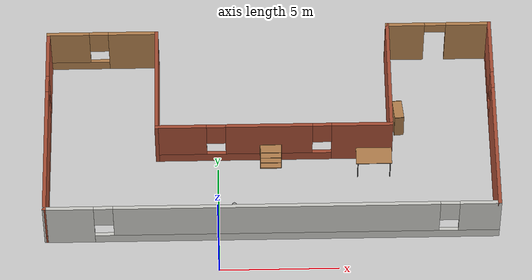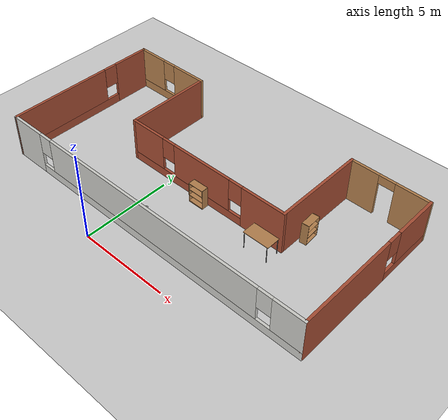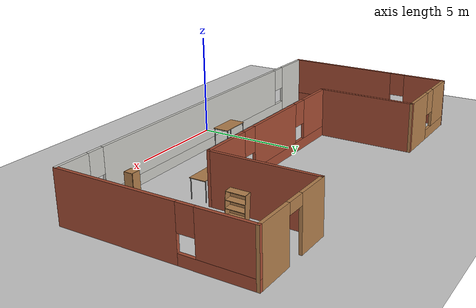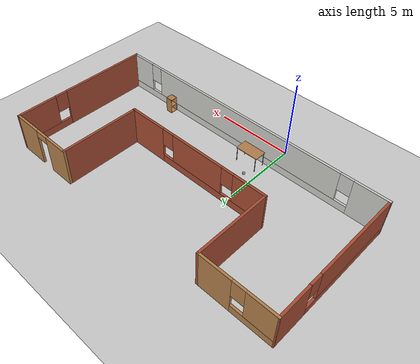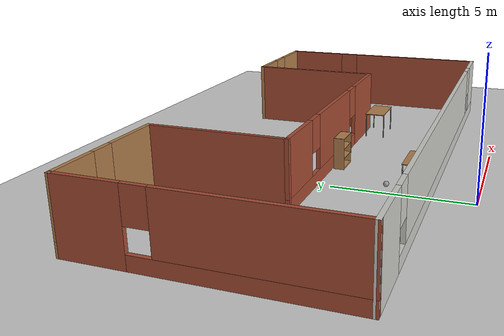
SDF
<sdf version="1.6">
 <world name="default">
  <light name="sun" type="directional">
   <pose>0 0 10 0 -0 0</pose>
   <diffuse>0.8 0.8 0.8 1</diffuse>
   <specular>0.2 0.2 0.2 1</specular>
   <attenuation>
    <range>1000</range>
    <constant>0.9</constant>
    <linear>0.01</linear>
    <quadratic>0.001</quadratic>
   </attenuation>
   <direction>-0.5 0.1 -0.9</direction>
  </light>
  <model name="ground_plane">
   <static>1</static>
   <link name="link">
    <collision name="collision">
     <geometry><plane><normal>0 0 1</normal><size>100 100</size></plane></geometry>
     <surface>
      <contact><collide_bitmask>65535</collide_bitmask></contact>
      <friction><ode><mu>100</mu><mu2>50</mu2></ode></friction>
     </surface>
    </collision>
    <visual name="visual">
     <cast_shadows>0</cast_shadows>
     <geometry><plane><normal>0 0 1</normal><size>100 100</size></plane></geometry>
     <material>
      <script><uri>file://media/materials/scripts/gazebo.material</uri><name>Gazebo/Grey</name></script>
     </material>
    </visual>
   </link>
  </model>
  <gravity>0 0 -9.8</gravity>
  <magnetic_field>6e-06 2.3e-05 -4.2e-05</magnetic_field>
  <atmosphere type="adiabatic"/>
  <physics name="default_physics" default="0" type="ode">
   <max_step_size>0.001</max_step_size>
   <real_time_factor>1</real_time_factor>
   <real_time_update_rate>1000</real_time_update_rate>
  </physics>
  <scene><ambient>0.4 0.4 0.4 1</ambient><background>0.7 0.7 0.7 1</background><shadows>1</shadows></scene>
  <spherical_coordinates>
   <surface_model>EARTH_WGS84</surface_model>
   <latitude_deg>0</latitude_deg>
   <longitude_deg>0</longitude_deg>
   <elevation>0</elevation>
   <heading_deg>0</heading_deg>
  </spherical_coordinates>
  <model name="building">
   <pose>2.21665 6.11467 0 0 -0 0</pose>
   <link name="Wall_0">
    <pose>0.000211 -4.54979 0 0 -0 0</pose>
    <visual name="Wall_0_Visual_0">
     <pose>-8.44191 0 1.25 0 -0 0</pose>
     <geometry><box><size>2.11618 0.15 2.5</size></box></geometry>
     <material>
      <script><uri>file://media/materials/scripts/gazebo.material</uri><name>Gazebo/CeilingTiled</name></script>
      <ambient>1 1 1 1</ambient>
     </material>
     <meta><layer>0</layer></meta>
    </visual>
    <collision name="Wall_0_Collision_0">
     <geometry><box><size>2.11618 0.15 2.5</size></box></geometry>
     <pose>-8.44191 0 1.25 0 -0 0</pose>
    </collision>
    <visual name="Wall_0_Visual_1">
     <pose>1.05809 0 0.25 0 -0 0</pose>
     <geometry><box><size>16.8838 0.15 0.5</size></box></geometry>
     <material>
      <script><uri>file://media/materials/scripts/gazebo.material</uri><name>Gazebo/CeilingTiled</name></script>
      <ambient>1 1 1 1</ambient>
     </material>
     <meta><layer>0</layer></meta>
    </visual>
    <collision name="Wall_0_Collision_1">
     <geometry><box><size>16.8838 0.15 0.5</size></box></geometry>
     <pose>1.05809 0 0.25 0 -0 0</pose>
    </collision>
    <visual name="Wall_0_Visual_2">
     <pose>0.193942 0 1.5 0 -0 0</pose>
     <geometry><box><size>13.5555 0.15 2</size></box></geometry>
     <material>
      <script><uri>file://media/materials/scripts/gazebo.material</uri><name>Gazebo/CeilingTiled</name></script>
      <ambient>1 1 1 1</ambient>
     </material>
     <meta><layer>0</layer></meta>
    </visual>
    <collision name="Wall_0_Collision_2">
     <geometry><box><size>13.5555 0.15 2</size></box></geometry>
     <pose>0.193942 0 1.5 0 -0 0</pose>
    </collision>
    <visual name="Wall_0_Visual_3">
     <pose>8.63585 0 1.5 0 -0 0</pose>
     <geometry><box><size>1.72829 0.15 2</size></box></geometry>
     <material>
      <script><uri>file://media/materials/scripts/gazebo.material</uri><name>Gazebo/CeilingTiled</name></script>
      <ambient>1 1 1 1</ambient>
     </material>
     <meta><layer>0</layer></meta>
    </visual>
    <collision name="Wall_0_Collision_3">
     <geometry><box><size>1.72829 0.15 2</size></box></geometry>
     <pose>8.63585 0 1.5 0 -0 0</pose>
    </collision>
    <visual name="Wall_0_Visual_4">
     <pose>-6.98382 0 1.9 0 -0 0</pose>
     <geometry><box><size>0.8 0.15 1.2</size></box></geometry>
     <material>
      <script><uri>file://media/materials/scripts/gazebo.material</uri><name>Gazebo/CeilingTiled</name></script>
      <ambient>1 1 1 1</ambient>
     </material>
     <meta><layer>0</layer></meta>
    </visual>
    <collision name="Wall_0_Collision_4">
     <geometry><box><size>0.8 0.15 1.2</size></box></geometry>
     <pose>-6.98382 0 1.9 0 -0 0</pose>
    </collision>
    <visual name="Wall_0_Visual_5">
     <pose>7.37171 0 1.9 0 -0 0</pose>
     <geometry><box><size>0.8 0.15 1.2</size></box></geometry>
     <material>
      <script><uri>file://media/materials/scripts/gazebo.material</uri><name>Gazebo/CeilingTiled</name></script>
      <ambient>1 1 1 1</ambient>
     </material>
     <meta><layer>0</layer></meta>
    </visual>
    <collision name="Wall_0_Collision_5">
     <geometry><box><size>0.8 0.15 1.2</size></box></geometry>
     <pose>7.37171 0 1.9 0 -0 0</pose>
    </collision>
   </link>
   <link name="Wall_1">
    <pose>9.42521 0.000211 0 0 -0 1.5708</pose>
    <visual name="Wall_1_Visual_0">
     <pose>-1.70833 0 1.25 0 -0 0</pose>
     <geometry><box><size>5.83334 0.15 2.5</size></box></geometry>
     <material>
      <script><uri>file://media/materials/scripts/gazebo.material</uri><name>Gazebo/Bricks</name></script>
      <ambient>1 1 1 1</ambient>
     </material>
     <meta><layer>0</layer></meta>
    </visual>
    <collision name="Wall_1_Collision_0">
     <geometry><box><size>5.83334 0.15 2.5</size></box></geometry>
     <pose>-1.70833 0 1.25 0 -0 0</pose>
    </collision>
    <visual name="Wall_1_Visual_1">
     <pose>2.91667 0 0.25 0 -0 0</pose>
     <geometry><box><size>3.41666 0.15 0.5</size></box></geometry>
     <material>
      <script><uri>file://media/materials/scripts/gazebo.material</uri><name>Gazebo/Bricks</name></script>
      <ambient>1 1 1 1</ambient>
     </material>
     <meta><layer>0</layer></meta>
    </visual>
    <collision name="Wall_1_Collision_1">
     <geometry><box><size>3.41666 0.15 0.5</size></box></geometry>
     <pose>2.91667 0 0.25 0 -0 0</pose>
    </collision>
    <visual name="Wall_1_Visual_2">
     <pose>3.31667 0 1.5 0 -0 0</pose>
     <geometry><box><size>2.61666 0.15 2</size></box></geometry>
     <material>
      <script><uri>file://media/materials/scripts/gazebo.material</uri><name>Gazebo/Bricks</name></script>
      <ambient>1 1 1 1</ambient>
     </material>
     <meta><layer>0</layer></meta>
    </visual>
    <collision name="Wall_1_Collision_2">
     <geometry><box><size>2.61666 0.15 2</size></box></geometry>
     <pose>3.31667 0 1.5 0 -0 0</pose>
    </collision>
    <visual name="Wall_1_Visual_3">
     <pose>1.60834 0 1.9 0 -0 0</pose>
     <geometry><box><size>0.8 0.15 1.2</size></box></geometry>
     <material>
      <script><uri>file://media/materials/scripts/gazebo.material</uri><name>Gazebo/Bricks</name></script>
      <ambient>1 1 1 1</ambient>
     </material>
     <meta><layer>0</layer></meta>
    </visual>
    <collision name="Wall_1_Collision_3">
     <geometry><box><size>0.8 0.15 1.2</size></box></geometry>
     <pose>1.60834 0 1.9 0 -0 0</pose>
    </collision>
   </link>
   <link name="Wall_2">
    <pose>7.25021 4.55021 0 0 -0 3.14159</pose>
    <visual name="Wall_2_Visual_0">
     <pose>-1.2871 0 1.25 0 -0 0</pose>
     <geometry><box><size>1.9258 0.15 2.5</size></box></geometry>
     <material>
      <script><uri>file://media/materials/scripts/gazebo.material</uri><name>Gazebo/Wood</name></script>
      <ambient>1 1 1 1</ambient>
     </material>
     <meta><layer>0</layer></meta>
    </visual>
    <collision name="Wall_2_Collision_0">
     <geometry><box><size>1.9258 0.15 2.5</size></box></geometry>
     <pose>-1.2871 0 1.25 0 -0 0</pose>
    </collision>
    <visual name="Wall_2_Visual_1">
     <pose>1.4129 0 1.25 0 -0 0</pose>
     <geometry><box><size>1.6742 0.15 2.5</size></box></geometry>
     <material>
      <script><uri>file://media/materials/scripts/gazebo.material</uri><name>Gazebo/Wood</name></script>
      <ambient>1 1 1 1</ambient>
     </material>
     <meta><layer>0</layer></meta>
    </visual>
    <collision name="Wall_2_Collision_1">
     <geometry><box><size>1.6742 0.15 2.5</size></box></geometry>
     <pose>1.4129 0 1.25 0 -0 0</pose>
    </collision>
    <visual name="Wall_2_Visual_2">
     <pose>0.125804 0 2.25 0 -0 0</pose>
     <geometry><box><size>0.9 0.15 0.5</size></box></geometry>
     <material>
      <script><uri>file://media/materials/scripts/gazebo.material</uri><name>Gazebo/Wood</name></script>
      <ambient>1 1 1 1</ambient>
     </material>
     <meta><layer>0</layer></meta>
    </visual>
    <collision name="Wall_2_Collision_2">
     <geometry><box><size>0.9 0.15 0.5</size></box></geometry>
     <pose>0.125804 0 2.25 0 -0 0</pose>
    </collision>
   </link>
   <link name="Wall_3">
    <collision name="Wall_3_Collision">
     <geometry><box><size>5.25 0.15 2.5</size></box></geometry>
     <pose>0 0 1.25 0 -0 0</pose>
    </collision>
    <visual name="Wall_3_Visual">
     <pose>0 0 1.25 0 -0 0</pose>
     <geometry><box><size>5.25 0.15 2.5</size></box></geometry>
     <material>
      <script><uri>file://media/materials/scripts/gazebo.material</uri><name>Gazebo/Bricks</name></script>
      <ambient>1 1 1 1</ambient>
     </material>
     <meta><layer>0</layer></meta>
    </visual>
    <pose>5.07521 2.00021 0 0 0 -1.5708</pose>
   </link>
   <link name="Wall_4">
    <pose>0.150211 -0.549788 0 0 -0 3.14159</pose>
    <visual name="Wall_4_Visual_0">
     <pose>-3.71201 0 1.25 0 -0 0</pose>
     <geometry><box><size>2.57599 0.15 2.5</size></box></geometry>
     <material>
      <script><uri>file://media/materials/scripts/gazebo.material</uri><name>Gazebo/Bricks</name></script>
      <ambient>1 1 1 1</ambient>
     </material>
     <meta><layer>0</layer></meta>
    </visual>
    <collision name="Wall_4_Collision_0">
     <geometry><box><size>2.57599 0.15 2.5</size></box></geometry>
     <pose>-3.71201 0 1.25 0 -0 0</pose>
    </collision>
    <visual name="Wall_4_Visual_1">
     <pose>1.28799 0 0.25 0 -0 0</pose>
     <geometry><box><size>7.42401 0.15 0.5</size></box></geometry>
     <material>
      <script><uri>file://media/materials/scripts/gazebo.material</uri><name>Gazebo/Bricks</name></script>
      <ambient>1 1 1 1</ambient>
     </material>
     <meta><layer>0</layer></meta>
    </visual>
    <collision name="Wall_4_Collision_1">
     <geometry><box><size>7.42401 0.15 0.5</size></box></geometry>
     <pose>1.28799 0 0.25 0 -0 0</pose>
    </collision>
    <visual name="Wall_4_Visual_2">
     <pose>0.203567 0 1.5 0 -0 0</pose>
     <geometry><box><size>3.65516 0.15 2</size></box></geometry>
     <material>
      <script><uri>file://media/materials/scripts/gazebo.material</uri><name>Gazebo/Bricks</name></script>
      <ambient>1 1 1 1</ambient>
     </material>
     <meta><layer>0</layer></meta>
    </visual>
    <collision name="Wall_4_Collision_2">
     <geometry><box><size>3.65516 0.15 2</size></box></geometry>
     <pose>0.203567 0 1.5 0 -0 0</pose>
    </collision>
    <visual name="Wall_4_Visual_3">
     <pose>3.91557 0 1.5 0 -0 0</pose>
     <geometry><box><size>2.16885 0.15 2</size></box></geometry>
     <material>
      <script><uri>file://media/materials/scripts/gazebo.material</uri><name>Gazebo/Bricks</name></script>
      <ambient>1 1 1 1</ambient>
     </material>
     <meta><layer>0</layer></meta>
    </visual>
    <collision name="Wall_4_Collision_3">
     <geometry><box><size>2.16885 0.15 2</size></box></geometry>
     <pose>3.91557 0 1.5 0 -0 0</pose>
    </collision>
    <visual name="Wall_4_Visual_4">
     <pose>-2.02401 0 1.9 0 -0 0</pose>
     <geometry><box><size>0.8 0.15 1.2</size></box></geometry>
     <material>
      <script><uri>file://media/materials/scripts/gazebo.material</uri><name>Gazebo/Bricks</name></script>
      <ambient>1 1 1 1</ambient>
     </material>
     <meta><layer>0</layer></meta>
    </visual>
    <collision name="Wall_4_Collision_4">
     <geometry><box><size>0.8 0.15 1.2</size></box></geometry>
     <pose>-2.02401 0 1.9 0 -0 0</pose>
    </collision>
    <visual name="Wall_4_Visual_5">
     <pose>2.43115 0 1.9 0 -0 0</pose>
     <geometry><box><size>0.8 0.15 1.2</size></box></geometry>
     <material>
      <script><uri>file://media/materials/scripts/gazebo.material</uri><name>Gazebo/Bricks</name></script>
      <ambient>1 1 1 1</ambient>
     </material>
     <meta><layer>0</layer></meta>
    </visual>
    <collision name="Wall_4_Collision_5">
     <geometry><box><size>0.8 0.15 1.2</size></box></geometry>
     <pose>2.43115 0 1.9 0 -0 0</pose>
    </collision>
   </link>
   <link name="Wall_5">
    <collision name="Wall_5_Collision">
     <geometry><box><size>5 0.15 2.5</size></box></geometry>
     <pose>0 0 1.25 0 -0 0</pose>
    </collision>
    <visual name="Wall_5_Visual">
     <pose>0 0 1.25 0 -0 0</pose>
     <geometry><box><size>5 0.15 2.5</size></box></geometry>
     <material>
      <script><uri>file://media/materials/scripts/gazebo.material</uri><name>Gazebo/Bricks</name></script>
      <ambient>1 1 1 1</ambient>
     </material>
     <meta><layer>0</layer></meta>
    </visual>
    <pose>-4.77479 1.87521 0 0 -0 1.5708</pose>
   </link>
   <link name="Wall_6">
    <pose>-7.07479 4.30021 0 0 -0 3.14159</pose>
    <visual name="Wall_6_Visual_0">
     <pose>-1.30933 0 1.25 0 -0 0</pose>
     <geometry><box><size>2.13133 0.15 2.5</size></box></geometry>
     <material>
      <script><uri>file://media/materials/scripts/gazebo.material</uri><name>Gazebo/Wood</name></script>
      <ambient>1 1 1 1</ambient>
     </material>
     <meta><layer>0</layer></meta>
    </visual>
    <collision name="Wall_6_Collision_0">
     <geometry><box><size>2.13133 0.15 2.5</size></box></geometry>
     <pose>-1.30933 0 1.25 0 -0 0</pose>
    </collision>
    <visual name="Wall_6_Visual_1">
     <pose>1.06567 0 0.25 0 -0 0</pose>
     <geometry><box><size>2.61867 0.15 0.5</size></box></geometry>
     <material>
      <script><uri>file://media/materials/scripts/gazebo.material</uri><name>Gazebo/Wood</name></script>
      <ambient>1 1 1 1</ambient>
     </material>
     <meta><layer>0</layer></meta>
    </visual>
    <collision name="Wall_6_Collision_1">
     <geometry><box><size>2.61867 0.15 0.5</size></box></geometry>
     <pose>1.06567 0 0.25 0 -0 0</pose>
    </collision>
    <visual name="Wall_6_Visual_2">
     <pose>1.46566 0 1.5 0 -0 0</pose>
     <geometry><box><size>1.81867 0.15 2</size></box></geometry>
     <material>
      <script><uri>file://media/materials/scripts/gazebo.material</uri><name>Gazebo/Wood</name></script>
      <ambient>1 1 1 1</ambient>
     </material>
     <meta><layer>0</layer></meta>
    </visual>
    <collision name="Wall_6_Collision_2">
     <geometry><box><size>1.81867 0.15 2</size></box></geometry>
     <pose>1.46566 0 1.5 0 -0 0</pose>
    </collision>
    <visual name="Wall_6_Visual_3">
     <pose>0.15633 0 1.9 0 -0 0</pose>
     <geometry><box><size>0.8 0.15 1.2</size></box></geometry>
     <material>
      <script><uri>file://media/materials/scripts/gazebo.material</uri><name>Gazebo/Wood</name></script>
      <ambient>1 1 1 1</ambient>
     </material>
     <meta><layer>0</layer></meta>
    </visual>
    <collision name="Wall_6_Collision_3">
     <geometry><box><size>0.8 0.15 1.2</size></box></geometry>
     <pose>0.15633 0 1.9 0 -0 0</pose>
    </collision>
   </link>
   <link name="Wall_7">
    <pose>-9.39979 -0.124789 0 0 0 -1.57645</pose>
    <visual name="Wall_7_Visual_0">
     <pose>-3.3784 0 1.25 0 -0 0</pose>
     <geometry><box><size>2.24334 0.15 2.5</size></box></geometry>
     <material>
      <script><uri>file://media/materials/scripts/gazebo.material</uri><name>Gazebo/Bricks</name></script>
      <ambient>1 1 1 1</ambient>
     </material>
     <meta><layer>0</layer></meta>
    </visual>
    <collision name="Wall_7_Collision_0">
     <geometry><box><size>2.24334 0.15 2.5</size></box></geometry>
     <pose>-3.3784 0 1.25 0 -0 0</pose>
    </collision>
    <visual name="Wall_7_Visual_1">
     <pose>1.12167 0 0.25 0 -0 0</pose>
     <geometry><box><size>6.7568 0.15 0.5</size></box></geometry>
     <material>
      <script><uri>file://media/materials/scripts/gazebo.material</uri><name>Gazebo/Bricks</name></script>
      <ambient>1 1 1 1</ambient>
     </material>
     <meta><layer>0</layer></meta>
    </visual>
    <collision name="Wall_7_Collision_1">
     <geometry><box><size>6.7568 0.15 0.5</size></box></geometry>
     <pose>1.12167 0 0.25 0 -0 0</pose>
    </collision>
    <visual name="Wall_7_Visual_2">
     <pose>1.52167 0 1.5 0 -0 0</pose>
     <geometry><box><size>5.95681 0.15 2</size></box></geometry>
     <material>
      <script><uri>file://media/materials/scripts/gazebo.material</uri><name>Gazebo/Bricks</name></script>
      <ambient>1 1 1 1</ambient>
     </material>
     <meta><layer>0</layer></meta>
    </visual>
    <collision name="Wall_7_Collision_2">
     <geometry><box><size>5.95681 0.15 2</size></box></geometry>
     <pose>1.52167 0 1.5 0 -0 0</pose>
    </collision>
    <visual name="Wall_7_Visual_3">
     <pose>-1.85673 0 1.9 0 -0 0</pose>
     <geometry><box><size>0.8 0.15 1.2</size></box></geometry>
     <material>
      <script><uri>file://media/materials/scripts/gazebo.material</uri><name>Gazebo/Bricks</name></script>
      <ambient>1 1 1 1</ambient>
     </material>
     <meta><layer>0</layer></meta>
    </visual>
    <collision name="Wall_7_Collision_3">
     <geometry><box><size>0.8 0.15 1.2</size></box></geometry>
     <pose>-1.85673 0 1.9 0 -0 0</pose>
    </collision>
   </link>
   <static>1</static>
  </model>
  <model name="bookshelf">
   <static>1</static>
   <link name="link">
    <inertial><mass>1</mass></inertial>
    <collision name="back">
     <pose>0 0.005 0.6 0 -0 0</pose>
     <geometry><box><size>0.9 0.01 1.2</size></box></geometry>
    </collision>
    <visual name="visual1">
     <pose>0 0.005 0.6 0 -0 0</pose>
     <geometry><box><size>0.9 0.01 1.2</size></box></geometry>
     <material>
      <script><uri>file://media/materials/scripts/gazebo.material</uri><name>Gazebo/Wood</name></script>
     </material>
    </visual>
    <collision name="left_side">
     <pose>0.45 -0.195 0.6 0 -0 0</pose>
     <geometry><box><size>0.02 0.4 1.2</size></box></geometry>
    </collision>
    <visual name="visual2">
     <pose>0.45 -0.195 0.6 0 -0 0</pose>
     <geometry><box><size>0.02 0.4 1.2</size></box></geometry>
     <material>
      <script><uri>file://media/materials/scripts/gazebo.material</uri><name>Gazebo/Wood</name></script>
     </material>
    </visual>
    <collision name="right_side">
     <pose>-0.45 -0.195 0.6 0 -0 0</pose>
     <geometry><box><size>0.02 0.4 1.2</size></box></geometry>
    </collision>
    <visual name="visual3">
     <pose>-0.45 -0.195 0.6 0 -0 0</pose>
     <geometry><box><size>0.02 0.4 1.2</size></box></geometry>
     <material>
      <script><uri>file://media/materials/scripts/gazebo.material</uri><name>Gazebo/Wood</name></script>
     </material>
    </visual>
    <collision name="bottom">
     <pose>0 -0.195 0.03 0 -0 0</pose>
     <geometry><box><size>0.88 0.4 0.06</size></box></geometry>
    </collision>
    <visual name="visual4">
     <pose>0 -0.195 0.03 0 -0 0</pose>
     <geometry><box><size>0.88 0.4 0.06</size></box></geometry>
     <material>
      <script><uri>file://media/materials/scripts/gazebo.material</uri><name>Gazebo/Wood</name></script>
     </material>
    </visual>
    <collision name="top">
     <pose>0 -0.195 1.19 0 -0 0</pose>
     <geometry><box><size>0.88 0.4 0.02</size></box></geometry>
    </collision>
    <visual name="visual5">
     <pose>0 -0.195 1.19 0 -0 0</pose>
     <geometry><box><size>0.88 0.4 0.02</size></box></geometry>
     <material>
      <script><uri>file://media/materials/scripts/gazebo.material</uri><name>Gazebo/Wood</name></script>
     </material>
    </visual>
    <collision name="low_shelf">
     <pose>0 -0.195 0.43 0 -0 0</pose>
     <geometry><box><size>0.88 0.4 0.02</size></box></geometry>
    </collision>
    <visual name="visual6">
     <pose>0 -0.195 0.43 0 -0 0</pose>
     <geometry><box><size>0.88 0.4 0.02</size></box></geometry>
     <material>
      <script><uri>file://media/materials/scripts/gazebo.material</uri><name>Gazebo/Wood</name></script>
     </material>
    </visual>
    <collision name="high_shelf">
     <pose>0 -0.195 0.8 0 -0 0</pose>
     <geometry><box><size>0.88 0.4 0.02</size></box></geometry>
    </collision>
    <visual name="visual7">
     <pose>0 -0.195 0.8 0 -0 0</pose>
     <geometry><box><size>0.88 0.4 0.02</size></box></geometry>
     <material>
      <script><uri>file://media/materials/scripts/gazebo.material</uri><name>Gazebo/Wood</name></script>
     </material>
    </visual>
   </link>
   <pose>2.23191 5.44119 0 0 -0 0</pose>
  </model>
  <model name="bookshelf_0">
   <static>1</static>
   <link name="link">
    <inertial><mass>1</mass></inertial>
    <collision name="back">
     <pose>0 0.005 0.6 0 -0 0</pose>
     <geometry><box><size>0.9 0.01 1.2</size></box></geometry>
    </collision>
    <visual name="visual1">
     <pose>0 0.005 0.6 0 -0 0</pose>
     <geometry><box><size>0.9 0.01 1.2</size></box></geometry>
     <material>
      <script><uri>file://media/materials/scripts/gazebo.material</uri><name>Gazebo/Wood</name></script>
     </material>
    </visual>
    <collision name="left_side">
     <pose>0.45 -0.195 0.6 0 -0 0</pose>
     <geometry><box><size>0.02 0.4 1.2</size></box></geometry>
    </collision>
    <visual name="visual2">
     <pose>0.45 -0.195 0.6 0 -0 0</pose>
     <geometry><box><size>0.02 0.4 1.2</size></box></geometry>
     <material>
      <script><uri>file://media/materials/scripts/gazebo.material</uri><name>Gazebo/Wood</name></script>
     </material>
    </visual>
    <collision name="right_side">
     <pose>-0.45 -0.195 0.6 0 -0 0</pose>
     <geometry><box><size>0.02 0.4 1.2</size></box></geometry>
    </collision>
    <visual name="visual3">
     <pose>-0.45 -0.195 0.6 0 -0 0</pose>
     <geometry><box><size>0.02 0.4 1.2</size></box></geometry>
     <material>
      <script><uri>file://media/materials/scripts/gazebo.material</uri><name>Gazebo/Wood</name></script>
     </material>
    </visual>
    <collision name="bottom">
     <pose>0 -0.195 0.03 0 -0 0</pose>
     <geometry><box><size>0.88 0.4 0.06</size></box></geometry>
    </collision>
    <visual name="visual4">
     <pose>0 -0.195 0.03 0 -0 0</pose>
     <geometry><box><size>0.88 0.4 0.06</size></box></geometry>
     <material>
      <script><uri>file://media/materials/scripts/gazebo.material</uri><name>Gazebo/Wood</name></script>
     </material>
    </visual>
    <collision name="top">
     <pose>0 -0.195 1.19 0 -0 0</pose>
     <geometry><box><size>0.88 0.4 0.02</size></box></geometry>
    </collision>
    <visual name="visual5">
     <pose>0 -0.195 1.19 0 -0 0</pose>
     <geometry><box><size>0.88 0.4 0.02</size></box></geometry>
     <material>
      <script><uri>file://media/materials/scripts/gazebo.material</uri><name>Gazebo/Wood</name></script>
     </material>
    </visual>
    <collision name="low_shelf">
     <pose>0 -0.195 0.43 0 -0 0</pose>
     <geometry><box><size>0.88 0.4 0.02</size></box></geometry>
    </collision>
    <visual name="visual6">
     <pose>0 -0.195 0.43 0 -0 0</pose>
     <geometry><box><size>0.88 0.4 0.02</size></box></geometry>
     <material>
      <script><uri>file://media/materials/scripts/gazebo.material</uri><name>Gazebo/Wood</name></script>
     </material>
    </visual>
    <collision name="high_shelf">
     <pose>0 -0.195 0.8 0 -0 0</pose>
     <geometry><box><size>0.88 0.4 0.02</size></box></geometry>
    </collision>
    <visual name="visual7">
     <pose>0 -0.195 0.8 0 -0 0</pose>
     <geometry><box><size>0.88 0.4 0.02</size></box></geometry>
     <material>
      <script><uri>file://media/materials/scripts/gazebo.material</uri><name>Gazebo/Wood</name></script>
     </material>
    </visual>
   </link>
   <pose>7.47666 7.08049 0 0.003173 0.056425 1.65793</pose>
  </model>
  <model name="cabinet">
   <static>1</static>
   <link name="cabinet_bottom_plate">
    <inertial>
     <pose>0 0 -1 0 -0 0</pose>
     <inertia><ixx>2.05</ixx><ixy>0</ixy><ixz>0</ixz><iyy>2.05</iyy><iyz>0</iyz><izz>2.05</izz></inertia>
     <mass>25</mass>
    </inertial>
    <collision name="cabinet_bottom_plate_geom">
     <pose>0 0 0.01 0 -0 0</pose>
     <geometry><box><size>0.45 0.45 0.02</size></box></geometry>
    </collision>
    <visual name="cabinet_bottom_plate_geom_visual">
     <pose>0 0 0.01 0 -0 0</pose>
     <geometry><box><size>0.45 0.45 0.02</size></box></geometry>
     <material>
      <script><uri>file://media/materials/scripts/gazebo.material</uri><name>Gazebo/Wood</name></script>
     </material>
    </visual>
    <collision name="cabinet_bottom_plate_geom_cabinet_back_plate">
     <pose>0.235 0 0.51 0 -0 0</pose>
     <geometry><box><size>0.02 0.45 1.02</size></box></geometry>
    </collision>
    <visual name="cabinet_bottom_plate_geom_cabinet_back_plate_visual">
     <pose>0.235 0 0.51 0 -0 0</pose>
     <geometry><box><size>0.02 0.45 1.02</size></box></geometry>
     <material>
      <script><uri>file://media/materials/scripts/gazebo.material</uri><name>Gazebo/Wood</name></script>
     </material>
    </visual>
    <collision name="cabinet_bottom_plate_geom_cabinet_left_plate">
     <pose>0 0.235 0.51 0 -0 0</pose>
     <geometry><box><size>0.45 0.02 1.02</size></box></geometry>
    </collision>
    <visual name="cabinet_bottom_plate_geom_cabinet_left_plate_visual">
     <pose>0 0.235 0.51 0 -0 0</pose>
     <geometry><box><size>0.45 0.02 1.02</size></box></geometry>
     <material>
      <script><uri>file://media/materials/scripts/gazebo.material</uri><name>Gazebo/Wood</name></script>
     </material>
    </visual>
    <collision name="cabinet_bottom_plate_geom_cabinet_middle_plate">
     <pose>0 0 0.51 0 -0 0</pose>
     <geometry><box><size>0.45 0.45 0.02</size></box></geometry>
    </collision>
    <visual name="cabinet_bottom_plate_geom_cabinet_middle_plate_visual">
     <pose>0 0 0.51 0 -0 0</pose>
     <geometry><box><size>0.45 0.45 0.02</size></box></geometry>
     <material>
      <script><uri>file://media/materials/scripts/gazebo.material</uri><name>Gazebo/Wood</name></script>
     </material>
    </visual>
    <collision name="cabinet_bottom_plate_geom_cabinet_right_plate">
     <pose>0 -0.235 0.51 0 -0 0</pose>
     <geometry><box><size>0.45 0.02 1.02</size></box></geometry>
    </collision>
    <visual name="cabinet_bottom_plate_geom_cabinet_right_plate_visual">
     <pose>0 -0.235 0.51 0 -0 0</pose>
     <geometry><box><size>0.45 0.02 1.02</size></box></geometry>
     <material>
      <script><uri>file://media/materials/scripts/gazebo.material</uri><name>Gazebo/Wood</name></script>
     </material>
    </visual>
    <collision name="cabinet_bottom_plate_geom_cabinet_top_plate">
     <pose>0 0 1.01 0 -0 0</pose>
     <geometry><box><size>0.45 0.45 0.02</size></box></geometry>
    </collision>
    <visual name="cabinet_bottom_plate_geom_cabinet_top_plate_visual">
     <pose>0 0 1.01 0 -0 0</pose>
     <geometry><box><size>0.45 0.45 0.02</size></box></geometry>
     <material>
      <script><uri>file://media/materials/scripts/gazebo.material</uri><name>Gazebo/Wood</name></script>
     </material>
    </visual>
   </link>
   <pose>7.94327 1.91897 0.017232 0 -0 0</pose>
  </model>
  <model name="table">
   <static>1</static>
   <link name="link">
    <collision name="surface">
     <pose>0 0 1 0 -0 0</pose>
     <geometry><box><size>1.5 0.8 0.03</size></box></geometry>
     <surface><friction><ode><mu>0.6</mu><mu2>0.6</mu2></ode></friction></surface>
    </collision>
    <visual name="visual1">
     <pose>0 0 1 0 -0 0</pose>
     <geometry><box><size>1.5 0.8 0.03</size></box></geometry>
     <material>
      <script><uri>file://media/materials/scripts/gazebo.material</uri><name>Gazebo/Wood</name></script>
     </material>
    </visual>
    <collision name="front_left_leg">
     <pose>0.68 0.38 0.5 0 -0 0</pose>
     <geometry><cylinder><radius>0.02</radius><length>1</length></cylinder></geometry>
    </collision>
    <visual name="front_left_leg">
     <pose>0.68 0.38 0.5 0 -0 0</pose>
     <geometry><cylinder><radius>0.02</radius><length>1</length></cylinder></geometry>
     <material>
      <script><uri>file://media/materials/scripts/gazebo.material</uri><name>Gazebo/Grey</name></script>
     </material>
    </visual>
    <collision name="front_right_leg">
     <pose>0.68 -0.38 0.5 0 -0 0</pose>
     <geometry><cylinder><radius>0.02</radius><length>1</length></cylinder></geometry>
    </collision>
    <visual name="front_right_leg">
     <pose>0.68 -0.38 0.5 0 -0 0</pose>
     <geometry><cylinder><radius>0.02</radius><length>1</length></cylinder></geometry>
     <material>
      <script><uri>file://media/materials/scripts/gazebo.material</uri><name>Gazebo/Grey</name></script>
     </material>
    </visual>
    <collision name="back_right_leg">
     <pose>-0.68 -0.38 0.5 0 -0 0</pose>
     <geometry><cylinder><radius>0.02</radius><length>1</length></cylinder></geometry>
    </collision>
    <visual name="back_right_leg">
     <pose>-0.68 -0.38 0.5 0 -0 0</pose>
     <geometry><cylinder><radius>0.02</radius><length>1</length></cylinder></geometry>
     <material>
      <script><uri>file://media/materials/scripts/gazebo.material</uri><name>Gazebo/Grey</name></script>
     </material>
    </visual>
    <collision name="back_left_leg">
     <pose>-0.68 0.38 0.5 0 -0 0</pose>
     <geometry><cylinder><radius>0.02</radius><length>1</length></cylinder></geometry>
    </collision>
    <visual name="back_left_leg">
     <pose>-0.68 0.38 0.5 0 -0 0</pose>
     <geometry><cylinder><radius>0.02</radius><length>1</length></cylinder></geometry>
     <material>
      <script><uri>file://media/materials/scripts/gazebo.material</uri><name>Gazebo/Grey</name></script>
     </material>
    </visual>
   </link>
   <pose>1.04747 2.18612 0.01154 0 -0 0</pose>
  </model>
  <model name="table_clone">
   <static>1</static>
   <link name="link">
    <collision name="surface">
     <pose>0 0 1 0 -0 0</pose>
     <geometry><box><size>1.5 0.8 0.03</size></box></geometry>
     <surface><friction><ode><mu>0.6</mu><mu2>0.6</mu2></ode></friction></surface>
    </collision>
    <visual name="visual1">
     <pose>0 0 1 0 -0 0</pose>
     <geometry><box><size>1.5 0.8 0.03</size></box></geometry>
     <material>
      <script><uri>file://media/materials/scripts/gazebo.material</uri><name>Gazebo/Wood</name></script>
     </material>
    </visual>
    <collision name="front_left_leg">
     <pose>0.68 0.38 0.5 0 -0 0</pose>
     <geometry><cylinder><radius>0.02</radius><length>1</length></cylinder></geometry>
    </collision>
    <visual name="front_left_leg">
     <pose>0.68 0.38 0.5 0 -0 0</pose>
     <geometry><cylinder><radius>0.02</radius><length>1</length></cylinder></geometry>
     <material>
      <script><uri>file://media/materials/scripts/gazebo.material</uri><name>Gazebo/Grey</name></script>
     </material>
    </visual>
    <collision name="front_right_leg">
     <pose>0.68 -0.38 0.5 0 -0 0</pose>
     <geometry><cylinder><radius>0.02</radius><length>1</length></cylinder></geometry>
    </collision>
    <visual name="front_right_leg">
     <pose>0.68 -0.38 0.5 0 -0 0</pose>
     <geometry><cylinder><radius>0.02</radius><length>1</length></cylinder></geometry>
     <material>
      <script><uri>file://media/materials/scripts/gazebo.material</uri><name>Gazebo/Grey</name></script>
     </material>
    </visual>
    <collision name="back_right_leg">
     <pose>-0.68 -0.38 0.5 0 -0 0</pose>
     <geometry><cylinder><radius>0.02</radius><length>1</length></cylinder></geometry>
    </collision>
    <visual name="back_right_leg">
     <pose>-0.68 -0.38 0.5 0 -0 0</pose>
     <geometry><cylinder><radius>0.02</radius><length>1</length></cylinder></geometry>
     <material>
      <script><uri>file://media/materials/scripts/gazebo.material</uri><name>Gazebo/Grey</name></script>
     </material>
    </visual>
    <collision name="back_left_leg">
     <pose>-0.68 0.38 0.5 0 -0 0</pose>
     <geometry><cylinder><radius>0.02</radius><length>1</length></cylinder></geometry>
    </collision>
    <visual name="back_left_leg">
     <pose>-0.68 0.38 0.5 0 -0 0</pose>
     <geometry><cylinder><radius>0.02</radius><length>1</length></cylinder></geometry>
     <material>
      <script><uri>file://media/materials/scripts/gazebo.material</uri><name>Gazebo/Grey</name></script>
     </material>
    </visual>
   </link>
   <pose>6.56833 4.90741 0.063466 0 -0 0</pose>
  </model>
  <model name="my_ball">
   <link name="link_0">
    <inertial>
     <mass>1</mass>
     <inertia><ixx>0.1</ixx><ixy>0</ixy><ixz>0</ixz><iyy>0.1</iyy><iyz>0</iyz><izz>0.1</izz></inertia>
    </inertial>
    <visual name="visual">
     <geometry><sphere><radius>0.1</radius></sphere></geometry>
     <material>
      <lighting>1</lighting>
      <script><uri>file://media/materials/scripts/gazebo.material</uri><name>Gazebo/Grey</name></script>
      <shader type="pixel"><normal_map>__default__</normal_map></shader>
      <ambient>1 1 1 1</ambient>
      <diffuse>1 1 1 1</diffuse>
      <specular>1 1 1 1</specular>
      <emissive>1 1 1 1</emissive>
     </material>
    </visual>
    <collision name="collision">
     <geometry><sphere><radius>0.1</radius></sphere></geometry>
     <surface>
      <friction>
       <ode><mu>1</mu><mu2>1</mu2><fdir1>0 0 0</fdir1><slip1>0</slip1><slip2>0</slip2></ode>
       <torsional>
        <coefficient>1</coefficient>
        <patch_radius>0</patch_radius>
        <surface_radius>0</surface_radius>
        <use_patch_radius>1</use_patch_radius>
        <ode><slip>0</slip></ode>
       </torsional>
      </friction>
      <bounce><restitution_coefficient>0</restitution_coefficient><threshold>1e+06</threshold></bounce>
      <contact>
       <collide_without_contact>0</collide_without_contact>
       <collide_without_contact_bitmask>1</collide_without_contact_bitmask>
       <collide_bitmask>1</collide_bitmask>
       <ode>
        <soft_cfm>0</soft_cfm>
        <soft_erp>0.2</soft_erp>
        <kp>1e+13</kp>
        <kd>1</kd>
        <max_vel>0.01</max_vel>
        <min_depth>0</min_depth>
       </ode>
       <bullet>
        <split_impulse>1</split_impulse>
        <split_impulse_penetration_threshold>-0.01</split_impulse_penetration_threshold>
        <soft_cfm>0</soft_cfm>
        <soft_erp>0.2</soft_erp>
        <kp>1e+13</kp>
        <kd>1</kd>
       </bullet>
      </contact>
     </surface>
    </collision>
   </link>
   <static>0</static>
   <pose>0.661221 3.178157 0.1 0 -0 0</pose>
  </model>
 </world>
</sdf>
